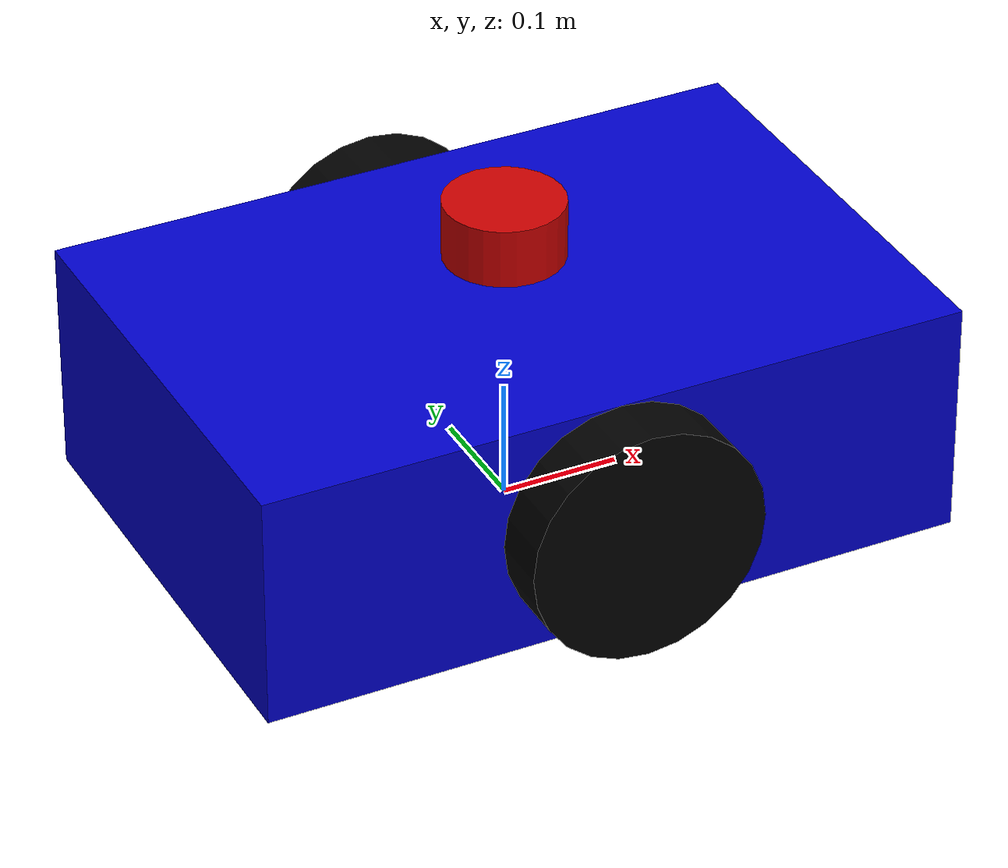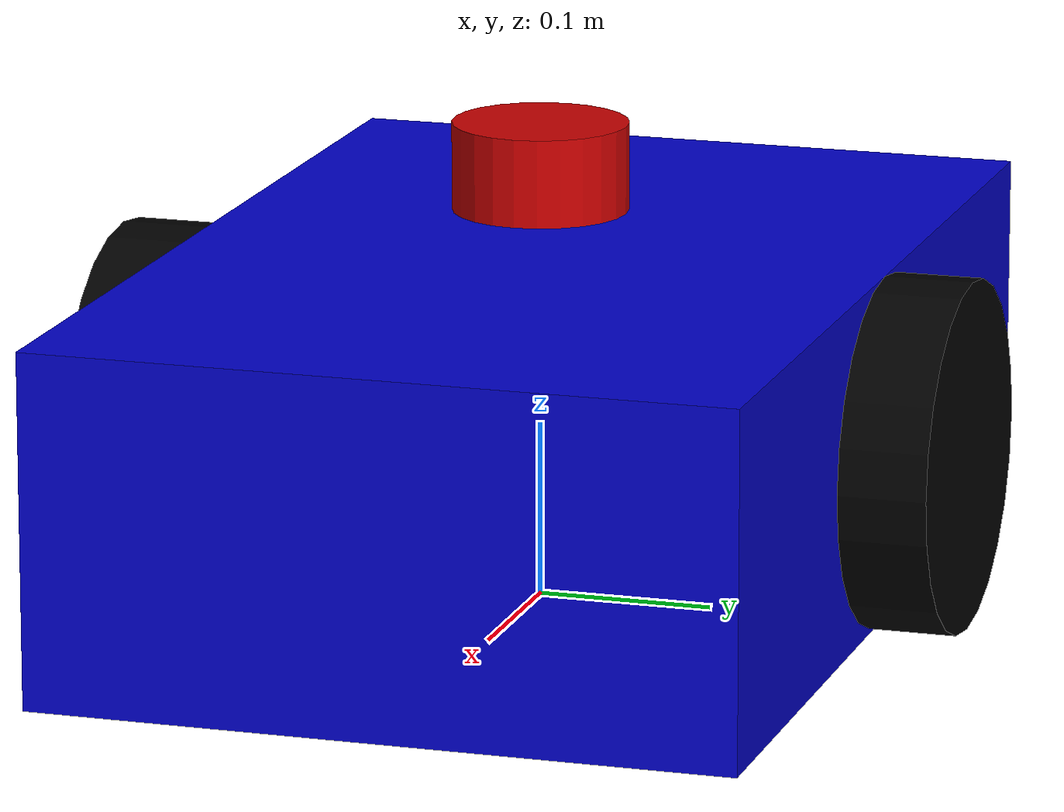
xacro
<?xml version="1.0"?>
<robot xmlns:xacro="http://www.ros.org/wiki/xacro" name="amr_robot">

  <!-- Properties -->
  <xacro:property name="base_length" value="0.6"/>
  <xacro:property name="base_width" value="0.4"/>
  <xacro:property name="base_height" value="0.2"/>
  <xacro:property name="wheel_radius" value="0.1"/>
  <xacro:property name="wheel_width" value="0.05"/>

  <!-- Base Link -->
  <link name="base_footprint"/>

  <joint name="base_joint" type="fixed">
    <parent link="base_footprint"/>
    <child link="base_link"/>
    <origin xyz="0 0 ${wheel_radius}" rpy="0 0 0"/>
  </joint>

  <link name="base_link">
    <visual>
      <geometry>
        <box size="${base_length} ${base_width} ${base_height}"/>
      </geometry>
      <material name="blue">
        <color rgba="0.0 0.0 0.8 1.0"/>
      </material>
    </visual>
    <collision>
      <geometry>
        <box size="${base_length} ${base_width} ${base_height}"/>
      </geometry>
    </collision>
    <inertial>
      <mass value="10.0"/>
      <inertia ixx="0.1" ixy="0.0" ixz="0.0"
               iyy="0.1" iyz="0.0" izz="0.1"/>
    </inertial>
  </link>

  <!-- Left Wheel -->
  <joint name="left_wheel_joint" type="continuous">
    <parent link="base_link"/>
    <child link="left_wheel"/>
    <origin xyz="0 ${base_width/2 + wheel_width/2} 0" rpy="-1.5708 0 0"/>
    <axis xyz="0 0 1"/>
  </joint>

  <link name="left_wheel">
    <visual>
      <geometry>
        <cylinder radius="${wheel_radius}" length="${wheel_width}"/>
      </geometry>
      <material name="black">
        <color rgba="0.0 0.0 0.0 1.0"/>
      </material>
    </visual>
    <collision>
      <geometry>
        <cylinder radius="${wheel_radius}" length="${wheel_width}"/>
      </geometry>
    </collision>
    <inertial>
      <mass value="1.0"/>
      <inertia ixx="0.01" ixy="0.0" ixz="0.0"
               iyy="0.01" iyz="0.0" izz="0.01"/>
    </inertial>
  </link>

  <!-- Right Wheel -->
  <joint name="right_wheel_joint" type="continuous">
    <parent link="base_link"/>
    <child link="right_wheel"/>
    <origin xyz="0 -${base_width/2 + wheel_width/2} 0" rpy="-1.5708 0 0"/>
    <axis xyz="0 0 1"/>
  </joint>

  <link name="right_wheel">
    <visual>
      <geometry>
        <cylinder radius="${wheel_radius}" length="${wheel_width}"/>
      </geometry>
      <material name="black">
        <color rgba="0.0 0.0 0.0 1.0"/>
      </material>
    </visual>
    <collision>
      <geometry>
        <cylinder radius="${wheel_radius}" length="${wheel_width}"/>
      </geometry>
    </collision>
    <inertial>
      <mass value="1.0"/>
      <inertia ixx="0.01" ixy="0.0" ixz="0.0"
               iyy="0.01" iyz="0.0" izz="0.01"/>
    </inertial>
  </link>

  <!-- Caster Wheel -->
  <joint name="caster_joint" type="fixed">
    <parent link="base_link"/>
    <child link="caster_wheel"/>
    <origin xyz="${base_length/2 - 0.05} 0 -${wheel_radius/2}" rpy="0 0 0"/>
  </joint>

  <link name="caster_wheel">
    <visual>
      <geometry>
        <sphere radius="${wheel_radius/2}"/>
      </geometry>
      <material name="grey">
        <color rgba="0.5 0.5 0.5 1.0"/>
      </material>
    </visual>
    <collision>
      <geometry>
        <sphere radius="${wheel_radius/2}"/>
      </geometry>
    </collision>
    <inertial>
      <mass value="0.5"/>
      <inertia ixx="0.001" ixy="0.0" ixz="0.0"
               iyy="0.001" iyz="0.0" izz="0.001"/>
    </inertial>
  </link>

  <!-- Lidar -->
  <joint name="lidar_joint" type="fixed">
    <parent link="base_link"/>
    <child link="lidar_link"/>
    <origin xyz="0 0 ${base_height/2 + 0.05}" rpy="0 0 0"/>
  </joint>

  <link name="lidar_link">
    <visual>
      <geometry>
        <cylinder radius="0.05" length="0.05"/>
      </geometry>
      <material name="red">
        <color rgba="0.8 0.0 0.0 1.0"/>
      </material>
    </visual>
  </link>

  <!-- Gazebo plugins -->
  <gazebo>
    <plugin filename="gz-sim-diff-drive-system"
            name="gz::sim::systems::DiffDrive">
      <left_joint>left_wheel_joint</left_joint>
      <right_joint>right_wheel_joint</right_joint>
      <wheel_separation>${base_width + wheel_width}</wheel_separation>
      <wheel_radius>${wheel_radius}</wheel_radius>
      <odom_publish_frequency>10</odom_publish_frequency>
      <topic>cmd_vel</topic>
      <odom_topic>odom</odom_topic>
      <frame_id>odom</frame_id>
      <child_frame_id>base_footprint</child_frame_id>
    </plugin>
  </gazebo>

  <gazebo reference="lidar_link">
    <sensor name="lidar" type="gpu_lidar">
      <topic>scan</topic>
      <gz_frame_id>lidar_link</gz_frame_id>
      <update_rate>10</update_rate>
      <lidar>
        <scan>
          <horizontal>
            <samples>360</samples>
            <resolution>1</resolution>
            <min_angle>-3.14159</min_angle>
            <max_angle>3.14159</max_angle>
          </horizontal>
        </scan>
        <range>
          <min>0.12</min>
          <max>10.0</max>
          <resolution>0.01</resolution>
        </range>
      </lidar>
      <always_on>1</always_on>
      <visualize>true</visualize>
    </sensor>
  </gazebo>

</robot>
